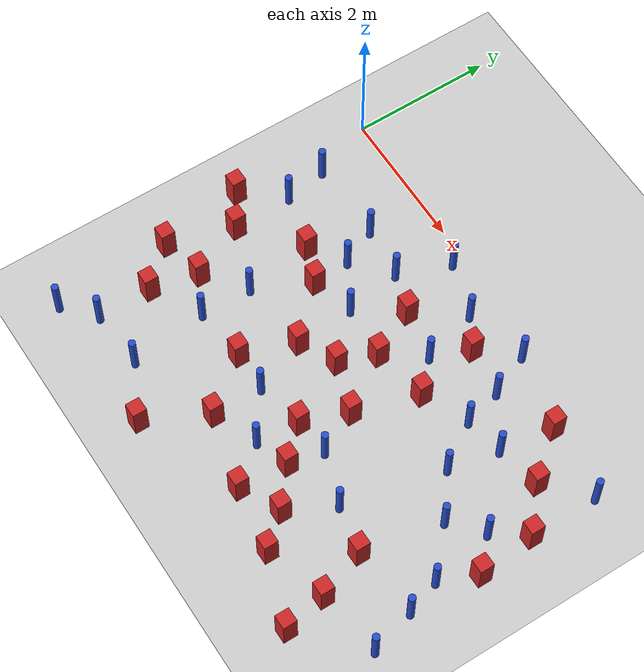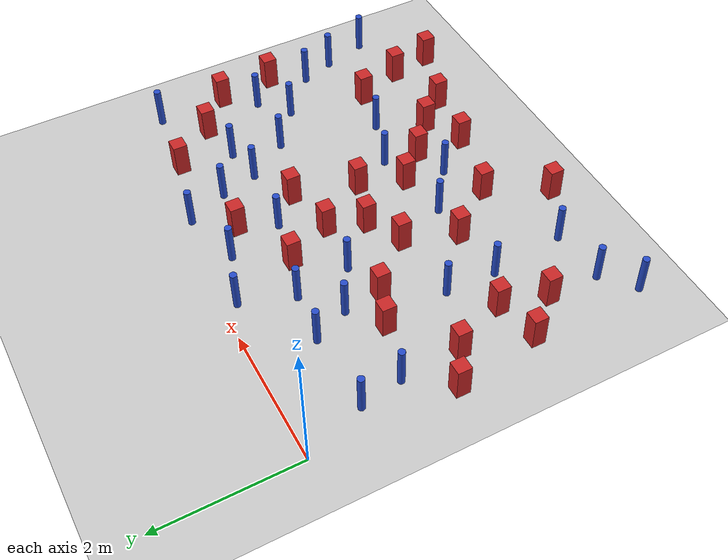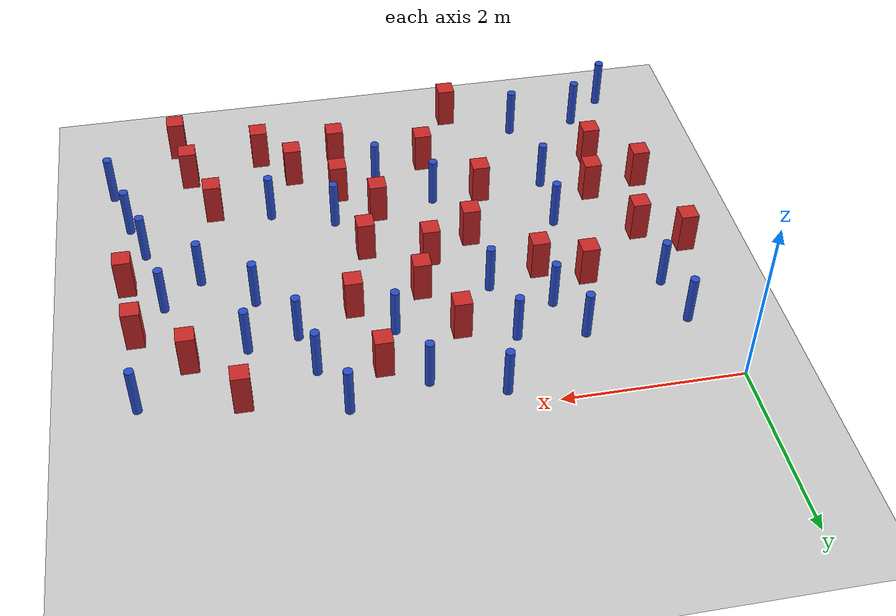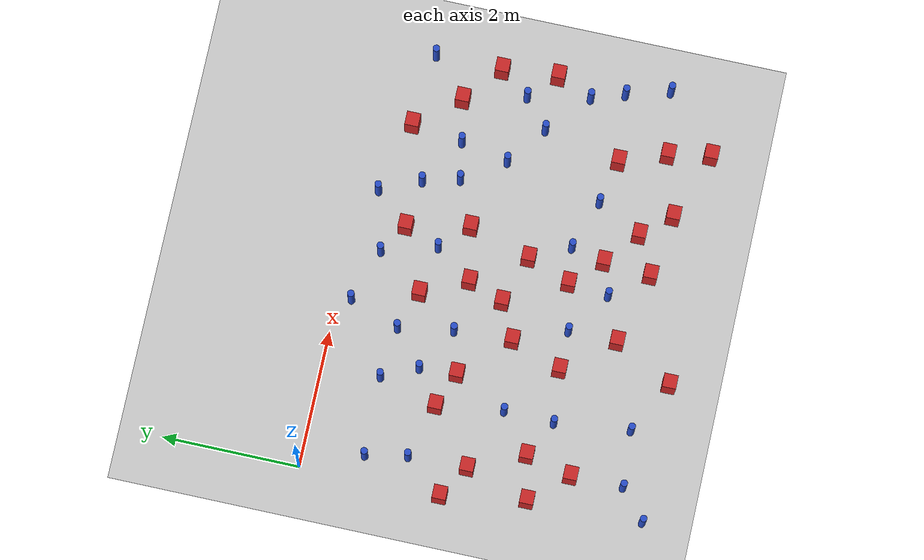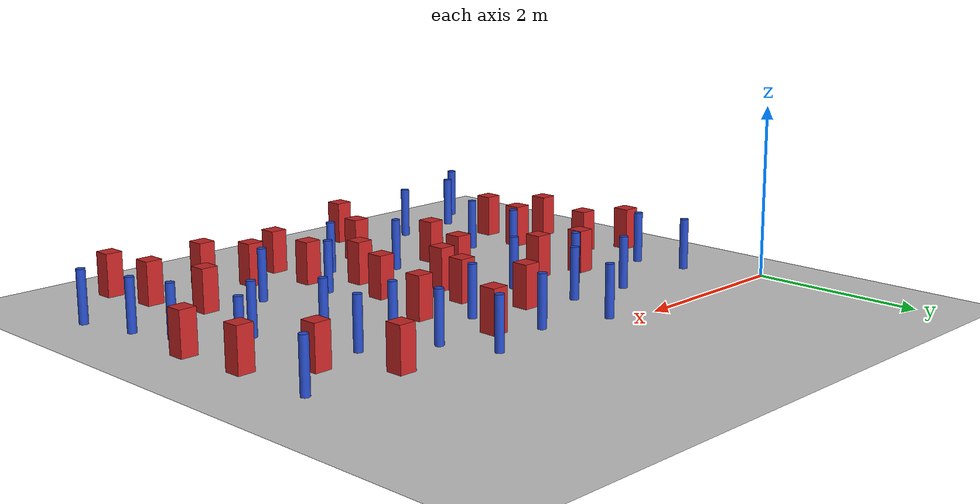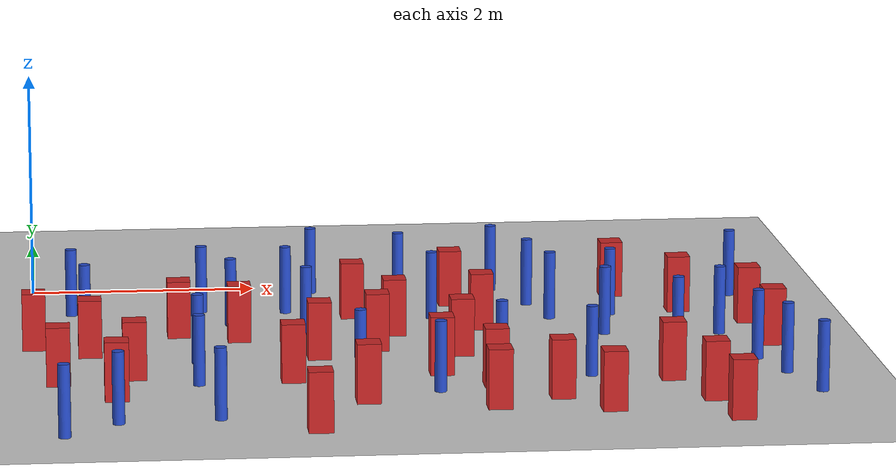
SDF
<sdf version="1.6">
 <world name="default">
  <model name="ground_plane">
   <static>1</static>
   <link name="link">
    <collision name="collision">
     <geometry><plane><normal>0 0 1</normal><size>100 100</size></plane></geometry>
     <surface><friction><ode><mu>100</mu><mu2>50</mu2></ode></friction></surface>
    </collision>
    <visual name="visual">
     <cast_shadows>0</cast_shadows>
     <geometry><plane><normal>0 0 1</normal><size>100 100</size></plane></geometry>
     <material>
      <ambient>1.0 1.0 1.0 1.0</ambient>
      <diffuse>0.8 0.8 0.8 1.0</diffuse>
      <specular>0.01 0.01 0.01 1.000000</specular>
     </material>
    </visual>
   </link>
  </model>
  <model name="pole_obstacle1">
   <static>true</static>
   <pose>4.14799465705 -0.242558096195 2.88873142074e-08 -9.90536689628e-09 4.60219948994e-07 -1.20965994959e-07</pose>
   <link name="link">
    <pose>0 0 0.3 0 -0 0</pose>
    <inertial>
     <mass>1</mass>
     <inertia><ixx>0.145833</ixx><ixy>0</ixy><ixz>0</ixz><iyy>0.145833</iyy><iyz>0</iyz><izz>0.125</izz></inertia>
    </inertial>
    <collision name="collision">
     <geometry><cylinder><radius>0.05</radius><length>.6</length></cylinder></geometry>
    </collision>
    <visual name="visual">
     <geometry><cylinder><radius>0.05</radius><length>.6</length></cylinder></geometry>
     <material>
      <script><name>Gazebo/Blue</name><uri>file://media/materials/scripts/gazebo.material</uri></script>
     </material>
    </visual>
   </link>
  </model>
  <model name="square_post_obstacle0">
   <static>true</static>
   <pose>3.7188085456 -0.741724730192 8.22691968438e-08 7.2212513382e-06 -7.54495500217e-07 2.29674213826e-05</pose>
   <link name="link">
    <pose>0 0 0.25 0 -0 0</pose>
    <inertial>
     <mass>100</mass>
     <inertia>
      <ixx>0.166667</ixx>
      <ixy>0</ixy>
      <ixz>0</ixz>
      <iyy>0.166667</iyy>
      <iyz>0</iyz>
      <izz>0.166667</izz>
     </inertia>
    </inertial>
    <collision name="collision"><geometry><box><size>.2 .2 .5</size></box></geometry></collision>
    <visual name="visual">
     <geometry><box><size>.2 .2 .5</size></box></geometry>
     <material>
      <script><name>Gazebo/Red</name><uri>file://media/materials/scripts/gazebo.material</uri></script>
     </material>
    </visual>
   </link>
  </model>
  <model name="pole_obstacle3">
   <static>true</static>
   <pose>3.50815053326 -1.26298609997 2.88873142074e-08 -9.90536689395e-09 4.60219949e-07 -1.20965994953e-07</pose>
   <link name="link">
    <pose>0 0 0.3 0 -0 0</pose>
    <inertial>
     <mass>1</mass>
     <inertia><ixx>0.145833</ixx><ixy>0</ixy><ixz>0</ixz><iyy>0.145833</iyy><iyz>0</iyz><izz>0.125</izz></inertia>
    </inertial>
    <collision name="collision">
     <geometry><cylinder><radius>0.05</radius><length>.6</length></cylinder></geometry>
    </collision>
    <visual name="visual">
     <geometry><cylinder><radius>0.05</radius><length>.6</length></cylinder></geometry>
     <material>
      <script><name>Gazebo/Blue</name><uri>file://media/materials/scripts/gazebo.material</uri></script>
     </material>
    </visual>
   </link>
  </model>
  <model name="pole_obstacle22">
   <static>true</static>
   <pose>0.338908169414 -0.882545459485 2.88873142074e-08 -9.9053668986e-09 4.60219948989e-07 -1.20965994961e-07</pose>
   <link name="link">
    <pose>0 0 0.3 0 -0 0</pose>
    <inertial>
     <mass>1</mass>
     <inertia><ixx>0.145833</ixx><ixy>0</ixy><ixz>0</ixz><iyy>0.145833</iyy><iyz>0</iyz><izz>0.125</izz></inertia>
    </inertial>
    <collision name="collision">
     <geometry><cylinder><radius>0.05</radius><length>.6</length></cylinder></geometry>
    </collision>
    <visual name="visual">
     <geometry><cylinder><radius>0.05</radius><length>.6</length></cylinder></geometry>
     <material>
      <script><name>Gazebo/Blue</name><uri>file://media/materials/scripts/gazebo.material</uri></script>
     </material>
    </visual>
   </link>
  </model>
  <model name="square_post_obstacle18">
   <static>true</static>
   <pose>3.75729930066 -4.32082164293 8.22691968438e-08 7.2212513382e-06 -7.54495500217e-07 2.29674213826e-05</pose>
   <link name="link">
    <pose>0 0 0.25 0 -0 0</pose>
    <inertial>
     <mass>100</mass>
     <inertia>
      <ixx>0.166667</ixx>
      <ixy>0</ixy>
      <ixz>0</ixz>
      <iyy>0.166667</iyy>
      <iyz>0</iyz>
      <izz>0.166667</izz>
     </inertia>
    </inertial>
    <collision name="collision"><geometry><box><size>.2 .2 .5</size></box></geometry></collision>
    <visual name="visual">
     <geometry><box><size>.2 .2 .5</size></box></geometry>
     <material>
      <script><name>Gazebo/Red</name><uri>file://media/materials/scripts/gazebo.material</uri></script>
     </material>
    </visual>
   </link>
  </model>
  <model name="pole_obstacle28">
   <static>true</static>
   <pose>4.95235969288 -1.96737347268 2.88873142074e-08 -9.90536689117e-09 4.60219949006e-07 -1.20965994949e-07</pose>
   <link name="link">
    <pose>0 0 0.3 0 -0 0</pose>
    <inertial>
     <mass>1</mass>
     <inertia><ixx>0.145833</ixx><ixy>0</ixy><ixz>0</ixz><iyy>0.145833</iyy><iyz>0</iyz><izz>0.125</izz></inertia>
    </inertial>
    <collision name="collision">
     <geometry><cylinder><radius>0.05</radius><length>.6</length></cylinder></geometry>
    </collision>
    <visual name="visual">
     <geometry><cylinder><radius>0.05</radius><length>.6</length></cylinder></geometry>
     <material>
      <script><name>Gazebo/Blue</name><uri>file://media/materials/scripts/gazebo.material</uri></script>
     </material>
    </visual>
   </link>
  </model>
  <model name="square_post_obstacle20">
   <static>true</static>
   <pose>2.41737415705 -2.58445904227 8.22691968438e-08 7.2212513382e-06 -7.54495500217e-07 2.29674213826e-05</pose>
   <link name="link">
    <pose>0 0 0.25 0 -0 0</pose>
    <inertial>
     <mass>100</mass>
     <inertia>
      <ixx>0.166667</ixx>
      <ixy>0</ixy>
      <ixz>0</ixz>
      <iyy>0.166667</iyy>
      <iyz>0</iyz>
      <izz>0.166667</izz>
     </inertia>
    </inertial>
    <collision name="collision"><geometry><box><size>.2 .2 .5</size></box></geometry></collision>
    <visual name="visual">
     <geometry><box><size>.2 .2 .5</size></box></geometry>
     <material>
      <script><name>Gazebo/Red</name><uri>file://media/materials/scripts/gazebo.material</uri></script>
     </material>
    </visual>
   </link>
  </model>
  <model name="pole_obstacle41">
   <static>true</static>
   <pose>0.238288000314 -4.93766443499 2.88873142074e-08 -9.90536689491e-09 4.60219948997e-07 -1.20965994955e-07</pose>
   <link name="link">
    <pose>0 0 0.3 0 -0 0</pose>
    <inertial>
     <mass>1</mass>
     <inertia><ixx>0.145833</ixx><ixy>0</ixy><ixz>0</ixz><iyy>0.145833</iyy><iyz>0</iyz><izz>0.125</izz></inertia>
    </inertial>
    <collision name="collision">
     <geometry><cylinder><radius>0.05</radius><length>.6</length></cylinder></geometry>
    </collision>
    <visual name="visual">
     <geometry><cylinder><radius>0.05</radius><length>.6</length></cylinder></geometry>
     <material>
      <script><name>Gazebo/Blue</name><uri>file://media/materials/scripts/gazebo.material</uri></script>
     </material>
    </visual>
   </link>
  </model>
  <model name="pole_obstacle44">
   <static>true</static>
   <pose>4.64222389461 -3.38996307122 2.88873142074e-08 -9.90536690245e-09 4.6021994898e-07 -1.20965994966e-07</pose>
   <link name="link">
    <pose>0 0 0.3 0 -0 0</pose>
    <inertial>
     <mass>1</mass>
     <inertia><ixx>0.145833</ixx><ixy>0</ixy><ixz>0</ixz><iyy>0.145833</iyy><iyz>0</iyz><izz>0.125</izz></inertia>
    </inertial>
    <collision name="collision">
     <geometry><cylinder><radius>0.05</radius><length>.6</length></cylinder></geometry>
    </collision>
    <visual name="visual">
     <geometry><cylinder><radius>0.05</radius><length>.6</length></cylinder></geometry>
     <material>
      <script><name>Gazebo/Blue</name><uri>file://media/materials/scripts/gazebo.material</uri></script>
     </material>
    </visual>
   </link>
  </model>
  <model name="square_post_obstacle37">
   <static>true</static>
   <pose>3.80883501356 -3.62921104398 8.22691968438e-08 7.2212513382e-06 -7.54495500217e-07 2.29674213826e-05</pose>
   <link name="link">
    <pose>0 0 0.25 0 -0 0</pose>
    <inertial>
     <mass>100</mass>
     <inertia>
      <ixx>0.166667</ixx>
      <ixy>0</ixy>
      <ixz>0</ixz>
      <iyy>0.166667</iyy>
      <iyz>0</iyz>
      <izz>0.166667</izz>
     </inertia>
    </inertial>
    <collision name="collision"><geometry><box><size>.2 .2 .5</size></box></geometry></collision>
    <visual name="visual">
     <geometry><box><size>.2 .2 .5</size></box></geometry>
     <material>
      <script><name>Gazebo/Red</name><uri>file://media/materials/scripts/gazebo.material</uri></script>
     </material>
    </visual>
   </link>
  </model>
  <model name="pole_obstacle55">
   <static>true</static>
   <pose>2.50852049271 -0.206989764907 2.88873142074e-08 -9.90536692243e-09 4.60219948932e-07 -1.20965994987e-07</pose>
   <link name="link">
    <pose>0 0 0.3 0 -0 0</pose>
    <inertial>
     <mass>1</mass>
     <inertia><ixx>0.145833</ixx><ixy>0</ixy><ixz>0</ixz><iyy>0.145833</iyy><iyz>0</iyz><izz>0.125</izz></inertia>
    </inertial>
    <collision name="collision">
     <geometry><cylinder><radius>0.05</radius><length>.6</length></cylinder></geometry>
    </collision>
    <visual name="visual">
     <geometry><cylinder><radius>0.05</radius><length>.6</length></cylinder></geometry>
     <material>
      <script><name>Gazebo/Blue</name><uri>file://media/materials/scripts/gazebo.material</uri></script>
     </material>
    </visual>
   </link>
  </model>
  <model name="square_post_obstacle51">
   <static>true</static>
   <pose>4.30704185627 -4.04356211505 8.22691968438e-08 7.2212513382e-06 -7.54495500217e-07 2.29674213826e-05</pose>
   <link name="link">
    <pose>0 0 0.25 0 -0 0</pose>
    <inertial>
     <mass>100</mass>
     <inertia>
      <ixx>0.166667</ixx>
      <ixy>0</ixy>
      <ixz>0</ixz>
      <iyy>0.166667</iyy>
      <iyz>0</iyz>
      <izz>0.166667</izz>
     </inertia>
    </inertial>
    <collision name="collision"><geometry><box><size>.2 .2 .5</size></box></geometry></collision>
    <visual name="visual">
     <geometry><box><size>.2 .2 .5</size></box></geometry>
     <material>
      <script><name>Gazebo/Red</name><uri>file://media/materials/scripts/gazebo.material</uri></script>
     </material>
    </visual>
   </link>
  </model>
  <model name="square_post_obstacle52">
   <static>true</static>
   <pose>3.39914178643 -3.19997491907 8.22691968438e-08 7.2212513382e-06 -7.54495500217e-07 2.29674213826e-05</pose>
   <link name="link">
    <pose>0 0 0.25 0 -0 0</pose>
    <inertial>
     <mass>100</mass>
     <inertia>
      <ixx>0.166667</ixx>
      <ixy>0</ixy>
      <ixz>0</ixz>
      <iyy>0.166667</iyy>
      <iyz>0</iyz>
      <izz>0.166667</izz>
     </inertia>
    </inertial>
    <collision name="collision"><geometry><box><size>.2 .2 .5</size></box></geometry></collision>
    <visual name="visual">
     <geometry><box><size>.2 .2 .5</size></box></geometry>
     <material>
      <script><name>Gazebo/Red</name><uri>file://media/materials/scripts/gazebo.material</uri></script>
     </material>
    </visual>
   </link>
  </model>
  <model name="square_post_obstacle54">
   <static>true</static>
   <pose>3.12628814423 -1.80748738485 8.22691968438e-08 7.2212513382e-06 -7.54495500217e-07 2.29674213826e-05</pose>
   <link name="link">
    <pose>0 0 0.25 0 -0 0</pose>
    <inertial>
     <mass>100</mass>
     <inertia>
      <ixx>0.166667</ixx>
      <ixy>0</ixy>
      <ixz>0</ixz>
      <iyy>0.166667</iyy>
      <iyz>0</iyz>
      <izz>0.166667</izz>
     </inertia>
    </inertial>
    <collision name="collision"><geometry><box><size>.2 .2 .5</size></box></geometry></collision>
    <visual name="visual">
     <geometry><box><size>.2 .2 .5</size></box></geometry>
     <material>
      <script><name>Gazebo/Red</name><uri>file://media/materials/scripts/gazebo.material</uri></script>
     </material>
    </visual>
   </link>
  </model>
  <model name="pole_obstacle70">
   <static>true</static>
   <pose>3.33233396735 -3.79147414755 2.88873142074e-08 -9.90536690232e-09 4.6021994898e-07 -1.20965994968e-07</pose>
   <link name="link">
    <pose>0 0 0.3 0 -0 0</pose>
    <inertial>
     <mass>1</mass>
     <inertia><ixx>0.145833</ixx><ixy>0</ixy><ixz>0</ixz><iyy>0.145833</iyy><iyz>0</iyz><izz>0.125</izz></inertia>
    </inertial>
    <collision name="collision">
     <geometry><cylinder><radius>0.05</radius><length>.6</length></cylinder></geometry>
    </collision>
    <visual name="visual">
     <geometry><cylinder><radius>0.05</radius><length>.6</length></cylinder></geometry>
     <material>
      <script><name>Gazebo/Blue</name><uri>file://media/materials/scripts/gazebo.material</uri></script>
     </material>
    </visual>
   </link>
  </model>
  <model name="square_post_obstacle66">
   <static>true</static>
   <pose>0.837022607704 -3.13448057922 8.22691968438e-08 7.2212513382e-06 -7.54495500217e-07 2.29674213826e-05</pose>
   <link name="link">
    <pose>0 0 0.25 0 -0 0</pose>
    <inertial>
     <mass>100</mass>
     <inertia>
      <ixx>0.166667</ixx>
      <ixy>0</ixy>
      <ixz>0</ixz>
      <iyy>0.166667</iyy>
      <iyz>0</iyz>
      <izz>0.166667</izz>
     </inertia>
    </inertial>
    <collision name="collision"><geometry><box><size>.2 .2 .5</size></box></geometry></collision>
    <visual name="visual">
     <geometry><box><size>.2 .2 .5</size></box></geometry>
     <material>
      <script><name>Gazebo/Red</name><uri>file://media/materials/scripts/gazebo.material</uri></script>
     </material>
    </visual>
   </link>
  </model>
  <model name="pole_obstacle78">
   <static>true</static>
   <pose>6.12475251126 -2.94781404142 2.88873142074e-08 -9.90536690245e-09 4.6021994898e-07 -1.20965994966e-07</pose>
   <link name="link">
    <pose>0 0 0.3 0 -0 0</pose>
    <inertial>
     <mass>1</mass>
     <inertia><ixx>0.145833</ixx><ixy>0</ixy><ixz>0</ixz><iyy>0.145833</iyy><iyz>0</iyz><izz>0.125</izz></inertia>
    </inertial>
    <collision name="collision">
     <geometry><cylinder><radius>0.05</radius><length>.6</length></cylinder></geometry>
    </collision>
    <visual name="visual">
     <geometry><cylinder><radius>0.05</radius><length>.6</length></cylinder></geometry>
     <material>
      <script><name>Gazebo/Blue</name><uri>file://media/materials/scripts/gazebo.material</uri></script>
     </material>
    </visual>
   </link>
  </model>
  <model name="pole_obstacle80">
   <static>true</static>
   <pose>3.28111691016 -0.468104953582 2.88873142074e-08 -9.90536689634e-09 4.60219948994e-07 -1.20965994958e-07</pose>
   <link name="link">
    <pose>0 0 0.3 0 -0 0</pose>
    <inertial>
     <mass>1</mass>
     <inertia><ixx>0.145833</ixx><ixy>0</ixy><ixz>0</ixz><iyy>0.145833</iyy><iyz>0</iyz><izz>0.125</izz></inertia>
    </inertial>
    <collision name="collision">
     <geometry><cylinder><radius>0.05</radius><length>.6</length></cylinder></geometry>
    </collision>
    <visual name="visual">
     <geometry><cylinder><radius>0.05</radius><length>.6</length></cylinder></geometry>
     <material>
      <script><name>Gazebo/Blue</name><uri>file://media/materials/scripts/gazebo.material</uri></script>
     </material>
    </visual>
   </link>
  </model>
  <model name="square_post_obstacle69">
   <static>true</static>
   <pose>1.25819297826 -1.71629216727 8.22691968438e-08 7.2212513382e-06 -7.54495500217e-07 2.29674213826e-05</pose>
   <link name="link">
    <pose>0 0 0.25 0 -0 0</pose>
    <inertial>
     <mass>100</mass>
     <inertia>
      <ixx>0.166667</ixx>
      <ixy>0</ixy>
      <ixz>0</ixz>
      <iyy>0.166667</iyy>
      <iyz>0</iyz>
      <izz>0.166667</izz>
     </inertia>
    </inertial>
    <collision name="collision"><geometry><box><size>.2 .2 .5</size></box></geometry></collision>
    <visual name="visual">
     <geometry><box><size>.2 .2 .5</size></box></geometry>
     <material>
      <script><name>Gazebo/Red</name><uri>file://media/materials/scripts/gazebo.material</uri></script>
     </material>
    </visual>
   </link>
  </model>
  <model name="square_post_obstacle78">
   <static>true</static>
   <pose>0.674095238642 -3.80381742312 8.22691968438e-08 7.2212513382e-06 -7.54495500217e-07 2.29674213826e-05</pose>
   <link name="link">
    <pose>0 0 0.25 0 -0 0</pose>
    <inertial>
     <mass>100</mass>
     <inertia>
      <ixx>0.166667</ixx>
      <ixy>0</ixy>
      <ixz>0</ixz>
      <iyy>0.166667</iyy>
      <iyz>0</iyz>
      <izz>0.166667</izz>
     </inertia>
    </inertial>
    <collision name="collision"><geometry><box><size>.2 .2 .5</size></box></geometry></collision>
    <visual name="visual">
     <geometry><box><size>.2 .2 .5</size></box></geometry>
     <material>
      <script><name>Gazebo/Red</name><uri>file://media/materials/scripts/gazebo.material</uri></script>
     </material>
    </visual>
   </link>
  </model>
  <model name="square_post_obstacle80">
   <static>true</static>
   <pose>2.93278602253 -2.32562689426 8.22691968438e-08 7.2212513382e-06 -7.54495500217e-07 2.29674213826e-05</pose>
   <link name="link">
    <pose>0 0 0.25 0 -0 0</pose>
    <inertial>
     <mass>100</mass>
     <inertia>
      <ixx>0.166667</ixx>
      <ixy>0</ixy>
      <ixz>0</ixz>
      <iyy>0.166667</iyy>
      <iyz>0</iyz>
      <izz>0.166667</izz>
     </inertia>
    </inertial>
    <collision name="collision"><geometry><box><size>.2 .2 .5</size></box></geometry></collision>
    <visual name="visual">
     <geometry><box><size>.2 .2 .5</size></box></geometry>
     <material>
      <script><name>Gazebo/Red</name><uri>file://media/materials/scripts/gazebo.material</uri></script>
     </material>
    </visual>
   </link>
  </model>
  <model name="square_post_obstacle81">
   <static>true</static>
   <pose>5.2081171145 -0.515778272554 8.22691968438e-08 7.2212513382e-06 -7.54495500217e-07 2.29674213826e-05</pose>
   <link name="link">
    <pose>0 0 0.25 0 -0 0</pose>
    <inertial>
     <mass>100</mass>
     <inertia>
      <ixx>0.166667</ixx>
      <ixy>0</ixy>
      <ixz>0</ixz>
      <iyy>0.166667</iyy>
      <iyz>0</iyz>
      <izz>0.166667</izz>
     </inertia>
    </inertial>
    <collision name="collision"><geometry><box><size>.2 .2 .5</size></box></geometry></collision>
    <visual name="visual">
     <geometry><box><size>.2 .2 .5</size></box></geometry>
     <material>
      <script><name>Gazebo/Red</name><uri>file://media/materials/scripts/gazebo.material</uri></script>
     </material>
    </visual>
   </link>
  </model>
  <model name="pole_obstacle90">
   <static>true</static>
   <pose>2.70952661724 -3.3417733489 2.88873142074e-08 -9.90536690232e-09 4.6021994898e-07 -1.20965994968e-07</pose>
   <link name="link">
    <pose>0 0 0.3 0 -0 0</pose>
    <inertial>
     <mass>1</mass>
     <inertia><ixx>0.145833</ixx><ixy>0</ixy><ixz>0</ixz><iyy>0.145833</iyy><iyz>0</iyz><izz>0.125</izz></inertia>
    </inertial>
    <collision name="collision">
     <geometry><cylinder><radius>0.05</radius><length>.6</length></cylinder></geometry>
    </collision>
    <visual name="visual">
     <geometry><cylinder><radius>0.05</radius><length>.6</length></cylinder></geometry>
     <material>
      <script><name>Gazebo/Blue</name><uri>file://media/materials/scripts/gazebo.material</uri></script>
     </material>
    </visual>
   </link>
  </model>
  <model name="pole_obstacle91">
   <static>true</static>
   <pose>5.94891460008 -2.04759569226 2.88873142074e-08 -9.90536689749e-09 4.60219948991e-07 -1.20965994959e-07</pose>
   <link name="link">
    <pose>0 0 0.3 0 -0 0</pose>
    <inertial>
     <mass>1</mass>
     <inertia><ixx>0.145833</ixx><ixy>0</ixy><ixz>0</ixz><iyy>0.145833</iyy><iyz>0</iyz><izz>0.125</izz></inertia>
    </inertial>
    <collision name="collision">
     <geometry><cylinder><radius>0.05</radius><length>.6</length></cylinder></geometry>
    </collision>
    <visual name="visual">
     <geometry><cylinder><radius>0.05</radius><length>.6</length></cylinder></geometry>
     <material>
      <script><name>Gazebo/Blue</name><uri>file://media/materials/scripts/gazebo.material</uri></script>
     </material>
    </visual>
   </link>
  </model>
  <model name="square_post_obstacle86">
   <static>true</static>
   <pose>2.80929862576 -1.14266982954 8.22691968438e-08 7.2212513382e-06 -7.54495500217e-07 2.29674213826e-05</pose>
   <link name="link">
    <pose>0 0 0.25 0 -0 0</pose>
    <inertial>
     <mass>100</mass>
     <inertia>
      <ixx>0.166667</ixx>
      <ixy>0</ixy>
      <ixz>0</ixz>
      <iyy>0.166667</iyy>
      <iyz>0</iyz>
      <izz>0.166667</izz>
     </inertia>
    </inertial>
    <collision name="collision"><geometry><box><size>.2 .2 .5</size></box></geometry></collision>
    <visual name="visual">
     <geometry><box><size>.2 .2 .5</size></box></geometry>
     <material>
      <script><name>Gazebo/Red</name><uri>file://media/materials/scripts/gazebo.material</uri></script>
     </material>
    </visual>
   </link>
  </model>
  <model name="square_post_obstacle89">
   <static>true</static>
   <pose>0.203200729287 -3.27220730286 8.22691968438e-08 7.2212513382e-06 -7.54495500217e-07 2.29674213826e-05</pose>
   <link name="link">
    <pose>0 0 0.25 0 -0 0</pose>
    <inertial>
     <mass>100</mass>
     <inertia>
      <ixx>0.166667</ixx>
      <ixy>0</ixy>
      <ixz>0</ixz>
      <iyy>0.166667</iyy>
      <iyz>0</iyz>
      <izz>0.166667</izz>
     </inertia>
    </inertial>
    <collision name="collision"><geometry><box><size>.2 .2 .5</size></box></geometry></collision>
    <visual name="visual">
     <geometry><box><size>.2 .2 .5</size></box></geometry>
     <material>
      <script><name>Gazebo/Red</name><uri>file://media/materials/scripts/gazebo.material</uri></script>
     </material>
    </visual>
   </link>
  </model>
  <model name="pole_obstacle105">
   <static>true</static>
   <pose>1.49172129263 -0.858161084746 2.88873142074e-08 -9.90536689692e-09 4.60219948993e-07 -1.20965994958e-07</pose>
   <link name="link">
    <pose>0 0 0.3 0 -0 0</pose>
    <inertial>
     <mass>1</mass>
     <inertia><ixx>0.145833</ixx><ixy>0</ixy><ixz>0</ixz><iyy>0.145833</iyy><iyz>0</iyz><izz>0.125</izz></inertia>
    </inertial>
    <collision name="collision">
     <geometry><cylinder><radius>0.05</radius><length>.6</length></cylinder></geometry>
    </collision>
    <visual name="visual">
     <geometry><cylinder><radius>0.05</radius><length>.6</length></cylinder></geometry>
     <material>
      <script><name>Gazebo/Blue</name><uri>file://media/materials/scripts/gazebo.material</uri></script>
     </material>
    </visual>
   </link>
  </model>
  <model name="pole_obstacle108">
   <static>true</static>
   <pose>4.40767858621 -0.829533924978 2.88873142074e-08 -9.90536689837e-09 4.60219948989e-07 -1.2096599496e-07</pose>
   <link name="link">
    <pose>0 0 0.3 0 -0 0</pose>
    <inertial>
     <mass>1</mass>
     <inertia><ixx>0.145833</ixx><ixy>0</ixy><ixz>0</ixz><iyy>0.145833</iyy><iyz>0</iyz><izz>0.125</izz></inertia>
    </inertial>
    <collision name="collision">
     <geometry><cylinder><radius>0.05</radius><length>.6</length></cylinder></geometry>
    </collision>
    <visual name="visual">
     <geometry><cylinder><radius>0.05</radius><length>.6</length></cylinder></geometry>
     <material>
      <script><name>Gazebo/Blue</name><uri>file://media/materials/scripts/gazebo.material</uri></script>
     </material>
    </visual>
   </link>
  </model>
  <model name="square_post_obstacle105">
   <static>true</static>
   <pose>3.63626102379 -2.56441701387 8.22691968438e-08 7.2212513382e-06 -7.54495500217e-07 2.29674213826e-05</pose>
   <link name="link">
    <pose>0 0 0.25 0 -0 0</pose>
    <inertial>
     <mass>100</mass>
     <inertia>
      <ixx>0.166667</ixx>
      <ixy>0</ixy>
      <ixz>0</ixz>
      <iyy>0.166667</iyy>
      <iyz>0</iyz>
      <izz>0.166667</izz>
     </inertia>
    </inertial>
    <collision name="collision"><geometry><box><size>.2 .2 .5</size></box></geometry></collision>
    <visual name="visual">
     <geometry><box><size>.2 .2 .5</size></box></geometry>
     <material>
      <script><name>Gazebo/Red</name><uri>file://media/materials/scripts/gazebo.material</uri></script>
     </material>
    </visual>
   </link>
  </model>
  <model name="square_post_obstacle112">
   <static>true</static>
   <pose>5.2995979953 -3.53253261902 8.22691968438e-08 7.2212513382e-06 -7.54495500217e-07 2.29674213826e-05</pose>
   <link name="link">
    <pose>0 0 0.25 0 -0 0</pose>
    <inertial>
     <mass>100</mass>
     <inertia>
      <ixx>0.166667</ixx>
      <ixy>0</ixy>
      <ixz>0</ixz>
      <iyy>0.166667</iyy>
      <iyz>0</iyz>
      <izz>0.166667</izz>
     </inertia>
    </inertial>
    <collision name="collision"><geometry><box><size>.2 .2 .5</size></box></geometry></collision>
    <visual name="visual">
     <geometry><box><size>.2 .2 .5</size></box></geometry>
     <material>
      <script><name>Gazebo/Red</name><uri>file://media/materials/scripts/gazebo.material</uri></script>
     </material>
    </visual>
   </link>
  </model>
  <model name="pole_obstacle117">
   <static>true</static>
   <pose>1.38202685603 -2.68647692397 2.88873142074e-08 -9.90536689791e-09 4.6021994899e-07 -1.20965994959e-07</pose>
   <link name="link">
    <pose>0 0 0.3 0 -0 0</pose>
    <inertial>
     <mass>1</mass>
     <inertia><ixx>0.145833</ixx><ixy>0</ixy><ixz>0</ixz><iyy>0.145833</iyy><iyz>0</iyz><izz>0.125</izz></inertia>
    </inertial>
    <collision name="collision">
     <geometry><cylinder><radius>0.05</radius><length>.6</length></cylinder></geometry>
    </collision>
    <visual name="visual">
     <geometry><cylinder><radius>0.05</radius><length>.6</length></cylinder></geometry>
     <material>
      <script><name>Gazebo/Blue</name><uri>file://media/materials/scripts/gazebo.material</uri></script>
     </material>
    </visual>
   </link>
  </model>
  <model name="square_post_obstacle120">
   <static>true</static>
   <pose>0.00581405477342 -2.05117652767 8.22691968438e-08 7.2212513382e-06 -7.54495500217e-07 2.29674213826e-05</pose>
   <link name="link">
    <pose>0 0 0.25 0 -0 0</pose>
    <inertial>
     <mass>100</mass>
     <inertia>
      <ixx>0.166667</ixx>
      <ixy>0</ixy>
      <ixz>0</ixz>
      <iyy>0.166667</iyy>
      <iyz>0</iyz>
      <izz>0.166667</izz>
     </inertia>
    </inertial>
    <collision name="collision"><geometry><box><size>.2 .2 .5</size></box></geometry></collision>
    <visual name="visual">
     <geometry><box><size>.2 .2 .5</size></box></geometry>
     <material>
      <script><name>Gazebo/Red</name><uri>file://media/materials/scripts/gazebo.material</uri></script>
     </material>
    </visual>
   </link>
  </model>
  <model name="square_post_obstacle123">
   <static>true</static>
   <pose>4.67229171555 -4.46523778112 8.22691968438e-08 7.22125133819e-06 -7.54495500217e-07 2.29674213826e-05</pose>
   <link name="link">
    <pose>0 0 0.25 0 -0 0</pose>
    <inertial>
     <mass>100</mass>
     <inertia>
      <ixx>0.166667</ixx>
      <ixy>0</ixy>
      <ixz>0</ixz>
      <iyy>0.166667</iyy>
      <iyz>0</iyz>
      <izz>0.166667</izz>
     </inertia>
    </inertial>
    <collision name="collision"><geometry><box><size>.2 .2 .5</size></box></geometry></collision>
    <visual name="visual">
     <geometry><box><size>.2 .2 .5</size></box></geometry>
     <material>
      <script><name>Gazebo/Red</name><uri>file://media/materials/scripts/gazebo.material</uri></script>
     </material>
    </visual>
   </link>
  </model>
  <model name="square_post_obstacle124">
   <static>true</static>
   <pose>5.72080999446 -1.14574526067 8.22691968438e-08 7.2212513382e-06 -7.54495500217e-07 2.29674213826e-05</pose>
   <link name="link">
    <pose>0 0 0.25 0 -0 0</pose>
    <inertial>
     <mass>100</mass>
     <inertia>
      <ixx>0.166667</ixx>
      <ixy>0</ixy>
      <ixz>0</ixz>
      <iyy>0.166667</iyy>
      <iyz>0</iyz>
      <izz>0.166667</izz>
     </inertia>
    </inertial>
    <collision name="collision"><geometry><box><size>.2 .2 .5</size></box></geometry></collision>
    <visual name="visual">
     <geometry><box><size>.2 .2 .5</size></box></geometry>
     <material>
      <script><name>Gazebo/Red</name><uri>file://media/materials/scripts/gazebo.material</uri></script>
     </material>
    </visual>
   </link>
  </model>
  <model name="pole_obstacle129">
   <static>true</static>
   <pose>0.67129893631 -4.5673194336 2.88873142074e-08 -9.90536689661e-09 4.60219948993e-07 -1.20965994957e-07</pose>
   <link name="link">
    <pose>0 0 0.3 0 -0 0</pose>
    <inertial>
     <mass>1</mass>
     <inertia><ixx>0.145833</ixx><ixy>0</ixy><ixz>0</ixz><iyy>0.145833</iyy><iyz>0</iyz><izz>0.125</izz></inertia>
    </inertial>
    <collision name="collision">
     <geometry><cylinder><radius>0.05</radius><length>.6</length></cylinder></geometry>
    </collision>
    <visual name="visual">
     <geometry><cylinder><radius>0.05</radius><length>.6</length></cylinder></geometry>
     <material>
      <script><name>Gazebo/Blue</name><uri>file://media/materials/scripts/gazebo.material</uri></script>
     </material>
    </visual>
   </link>
  </model>
  <model name="square_post_obstacle127">
   <static>true</static>
   <pose>6.27019614949 -1.61295816834 8.22691968438e-08 7.2212513382e-06 -7.54495500217e-07 2.29674213826e-05</pose>
   <link name="link">
    <pose>0 0 0.25 0 -0 0</pose>
    <inertial>
     <mass>100</mass>
     <inertia>
      <ixx>0.166667</ixx>
      <ixy>0</ixy>
      <ixz>0</ixz>
      <iyy>0.166667</iyy>
      <iyz>0</iyz>
      <izz>0.166667</izz>
     </inertia>
    </inertial>
    <collision name="collision"><geometry><box><size>.2 .2 .5</size></box></geometry></collision>
    <visual name="visual">
     <geometry><box><size>.2 .2 .5</size></box></geometry>
     <material>
      <script><name>Gazebo/Red</name><uri>file://media/materials/scripts/gazebo.material</uri></script>
     </material>
    </visual>
   </link>
  </model>
  <model name="square_post_obstacle133">
   <static>true</static>
   <pose>3.90386691734 -1.65754828961 8.22691968438e-08 7.2212513382e-06 -7.54495500217e-07 2.29674213826e-05</pose>
   <link name="link">
    <pose>0 0 0.25 0 -0 0</pose>
    <inertial>
     <mass>100</mass>
     <inertia>
      <ixx>0.166667</ixx>
      <ixy>0</ixy>
      <ixz>0</ixz>
      <iyy>0.166667</iyy>
      <iyz>0</iyz>
      <izz>0.166667</izz>
     </inertia>
    </inertial>
    <collision name="collision"><geometry><box><size>.2 .2 .5</size></box></geometry></collision>
    <visual name="visual">
     <geometry><box><size>.2 .2 .5</size></box></geometry>
     <material>
      <script><name>Gazebo/Red</name><uri>file://media/materials/scripts/gazebo.material</uri></script>
     </material>
    </visual>
   </link>
  </model>
  <model name="square_post_obstacle135">
   <static>true</static>
   <pose>5.66116898316 -4.81783899321 8.22691968438e-08 7.22125133819e-06 -7.54495500217e-07 2.29674213826e-05</pose>
   <link name="link">
    <pose>0 0 0.25 0 -0 0</pose>
    <inertial>
     <mass>100</mass>
     <inertia>
      <ixx>0.166667</ixx>
      <ixy>0</ixy>
      <ixz>0</ixz>
      <iyy>0.166667</iyy>
      <iyz>0</iyz>
      <izz>0.166667</izz>
     </inertia>
    </inertial>
    <collision name="collision"><geometry><box><size>.2 .2 .5</size></box></geometry></collision>
    <visual name="visual">
     <geometry><box><size>.2 .2 .5</size></box></geometry>
     <material>
      <script><name>Gazebo/Red</name><uri>file://media/materials/scripts/gazebo.material</uri></script>
     </material>
    </visual>
   </link>
  </model>
  <model name="square_post_obstacle138">
   <static>true</static>
   <pose>2.14614741345 -3.33388900239 8.22691968438e-08 7.2212513382e-06 -7.54495500217e-07 2.29674213826e-05</pose>
   <link name="link">
    <pose>0 0 0.25 0 -0 0</pose>
    <inertial>
     <mass>100</mass>
     <inertia>
      <ixx>0.166667</ixx>
      <ixy>0</ixy>
      <ixz>0</ixz>
      <iyy>0.166667</iyy>
      <iyz>0</iyz>
      <izz>0.166667</izz>
     </inertia>
    </inertial>
    <collision name="collision"><geometry><box><size>.2 .2 .5</size></box></geometry></collision>
    <visual name="visual">
     <geometry><box><size>.2 .2 .5</size></box></geometry>
     <material>
      <script><name>Gazebo/Red</name><uri>file://media/materials/scripts/gazebo.material</uri></script>
     </material>
    </visual>
   </link>
  </model>
  <model name="pole_obstacle150">
   <static>true</static>
   <pose>2.23435759743 -0.943439589609 2.88873142074e-08 -9.90536689285e-09 4.60219949002e-07 -1.20965994953e-07</pose>
   <link name="link">
    <pose>0 0 0.3 0 -0 0</pose>
    <inertial>
     <mass>1</mass>
     <inertia><ixx>0.145833</ixx><ixy>0</ixy><ixz>0</ixz><iyy>0.145833</iyy><iyz>0</iyz><izz>0.125</izz></inertia>
    </inertial>
    <collision name="collision">
     <geometry><cylinder><radius>0.05</radius><length>.6</length></cylinder></geometry>
    </collision>
    <visual name="visual">
     <geometry><cylinder><radius>0.05</radius><length>.6</length></cylinder></geometry>
     <material>
      <script><name>Gazebo/Blue</name><uri>file://media/materials/scripts/gazebo.material</uri></script>
     </material>
    </visual>
   </link>
  </model>
  <model name="pole_obstacle159">
   <static>true</static>
   <pose>2.3641724647 -1.74226365126 2.88873142074e-08 -9.90536689395e-09 4.60219949e-07 -1.20965994953e-07</pose>
   <link name="link">
    <pose>0 0 0.3 0 -0 0</pose>
    <inertial>
     <mass>1</mass>
     <inertia><ixx>0.145833</ixx><ixy>0</ixy><ixz>0</ixz><iyy>0.145833</iyy><iyz>0</iyz><izz>0.125</izz></inertia>
    </inertial>
    <collision name="collision">
     <geometry><cylinder><radius>0.05</radius><length>.6</length></cylinder></geometry>
    </collision>
    <visual name="visual">
     <geometry><cylinder><radius>0.05</radius><length>.6</length></cylinder></geometry>
     <material>
      <script><name>Gazebo/Blue</name><uri>file://media/materials/scripts/gazebo.material</uri></script>
     </material>
    </visual>
   </link>
  </model>
  <model name="pole_obstacle161">
   <static>true</static>
   <pose>1.72796563735 -1.37428727787 2.88873142074e-08 -9.90536689672e-09 4.60219948993e-07 -1.20965994959e-07</pose>
   <link name="link">
    <pose>0 0 0.3 0 -0 0</pose>
    <inertial>
     <mass>1</mass>
     <inertia><ixx>0.145833</ixx><ixy>0</ixy><ixz>0</ixz><iyy>0.145833</iyy><iyz>0</iyz><izz>0.125</izz></inertia>
    </inertial>
    <collision name="collision">
     <geometry><cylinder><radius>0.05</radius><length>.6</length></cylinder></geometry>
    </collision>
    <visual name="visual">
     <geometry><cylinder><radius>0.05</radius><length>.6</length></cylinder></geometry>
     <material>
      <script><name>Gazebo/Blue</name><uri>file://media/materials/scripts/gazebo.material</uri></script>
     </material>
    </visual>
   </link>
  </model>
  <model name="pole_obstacle165">
   <static>true</static>
   <pose>0.45021324602 -1.48854853887 2.88873142074e-08 -9.90536689915e-09 4.60219948987e-07 -1.20965994962e-07</pose>
   <link name="link">
    <pose>0 0 0.3 0 -0 0</pose>
    <inertial>
     <mass>1</mass>
     <inertia><ixx>0.145833</ixx><ixy>0</ixy><ixz>0</ixz><iyy>0.145833</iyy><iyz>0</iyz><izz>0.125</izz></inertia>
    </inertial>
    <collision name="collision">
     <geometry><cylinder><radius>0.05</radius><length>.6</length></cylinder></geometry>
    </collision>
    <visual name="visual">
     <geometry><cylinder><radius>0.05</radius><length>.6</length></cylinder></geometry>
     <material>
      <script><name>Gazebo/Blue</name><uri>file://media/materials/scripts/gazebo.material</uri></script>
     </material>
    </visual>
   </link>
  </model>
  <model name="square_post_obstacle159">
   <static>true</static>
   <pose>5.54608547171 -4.20831526017 8.22691968438e-08 7.2212513382e-06 -7.54495500217e-07 2.29674213826e-05</pose>
   <link name="link">
    <pose>0 0 0.25 0 -0 0</pose>
    <inertial>
     <mass>100</mass>
     <inertia>
      <ixx>0.166667</ixx>
      <ixy>0</ixy>
      <ixz>0</ixz>
      <iyy>0.166667</iyy>
      <iyz>0</iyz>
      <izz>0.166667</izz>
     </inertia>
    </inertial>
    <collision name="collision"><geometry><box><size>.2 .2 .5</size></box></geometry></collision>
    <visual name="visual">
     <geometry><box><size>.2 .2 .5</size></box></geometry>
     <material>
      <script><name>Gazebo/Red</name><uri>file://media/materials/scripts/gazebo.material</uri></script>
     </material>
    </visual>
   </link>
  </model>
  <model name="square_post_obstacle161">
   <static>true</static>
   <pose>2.71353387674 -4.05318906893 8.22691968438e-08 7.2212513382e-06 -7.54495500217e-07 2.29674213826e-05</pose>
   <link name="link">
    <pose>0 0 0.25 0 -0 0</pose>
    <inertial>
     <mass>100</mass>
     <inertia>
      <ixx>0.166667</ixx>
      <ixy>0</ixy>
      <ixz>0</ixz>
      <iyy>0.166667</iyy>
      <iyz>0</iyz>
      <izz>0.166667</izz>
     </inertia>
    </inertial>
    <collision name="collision"><geometry><box><size>.2 .2 .5</size></box></geometry></collision>
    <visual name="visual">
     <geometry><box><size>.2 .2 .5</size></box></geometry>
     <material>
      <script><name>Gazebo/Red</name><uri>file://media/materials/scripts/gazebo.material</uri></script>
     </material>
    </visual>
   </link>
  </model>
  <model name="square_post_obstacle163">
   <static>true</static>
   <pose>6.34656123098 -2.42715225348 8.22691968438e-08 7.2212513382e-06 -7.54495500217e-07 2.29674213826e-05</pose>
   <link name="link">
    <pose>0 0 0.25 0 -0 0</pose>
    <inertial>
     <mass>100</mass>
     <inertia>
      <ixx>0.166667</ixx>
      <ixy>0</ixy>
      <ixz>0</ixz>
      <iyy>0.166667</iyy>
      <iyz>0</iyz>
      <izz>0.166667</izz>
     </inertia>
    </inertial>
    <collision name="collision"><geometry><box><size>.2 .2 .5</size></box></geometry></collision>
    <visual name="visual">
     <geometry><box><size>.2 .2 .5</size></box></geometry>
     <material>
      <script><name>Gazebo/Red</name><uri>file://media/materials/scripts/gazebo.material</uri></script>
     </material>
    </visual>
   </link>
  </model>
  <model name="pole_obstacle175">
   <static>true</static>
   <pose>1.49064036551 -4.51066730391 2.88873142074e-08 -9.90536689852e-09 4.60219948989e-07 -1.2096599496e-07</pose>
   <link name="link">
    <pose>0 0 0.3 0 -0 0</pose>
    <inertial>
     <mass>1</mass>
     <inertia><ixx>0.145833</ixx><ixy>0</ixy><ixz>0</ixz><iyy>0.145833</iyy><iyz>0</iyz><izz>0.125</izz></inertia>
    </inertial>
    <collision name="collision">
     <geometry><cylinder><radius>0.05</radius><length>.6</length></cylinder></geometry>
    </collision>
    <visual name="visual">
     <geometry><cylinder><radius>0.05</radius><length>.6</length></cylinder></geometry>
     <material>
      <script><name>Gazebo/Blue</name><uri>file://media/materials/scripts/gazebo.material</uri></script>
     </material>
    </visual>
   </link>
  </model>
  <model name="pole_obstacle182">
   <static>true</static>
   <pose>6.27801611734 -0.630572229703 2.88873142074e-08 -9.90536689837e-09 4.60219948989e-07 -1.2096599496e-07</pose>
   <link name="link">
    <pose>0 0 0.3 0 -0 0</pose>
    <inertial>
     <mass>1</mass>
     <inertia><ixx>0.145833</ixx><ixy>0</ixy><ixz>0</ixz><iyy>0.145833</iyy><iyz>0</iyz><izz>0.125</izz></inertia>
    </inertial>
    <collision name="collision">
     <geometry><cylinder><radius>0.05</radius><length>.6</length></cylinder></geometry>
    </collision>
    <visual name="visual">
     <geometry><cylinder><radius>0.05</radius><length>.6</length></cylinder></geometry>
     <material>
      <script><name>Gazebo/Blue</name><uri>file://media/materials/scripts/gazebo.material</uri></script>
     </material>
    </visual>
   </link>
  </model>
  <model name="square_post_obstacle189">
   <static>true</static>
   <pose>2.25965412649 -4.90754797474 8.22691968438e-08 7.22125133819e-06 -7.54495500217e-07 2.29674213826e-05</pose>
   <link name="link">
    <pose>0 0 0.25 0 -0 0</pose>
    <inertial>
     <mass>100</mass>
     <inertia>
      <ixx>0.166667</ixx>
      <ixy>0</ixy>
      <ixz>0</ixz>
      <iyy>0.166667</iyy>
      <iyz>0</iyz>
      <izz>0.166667</izz>
     </inertia>
    </inertial>
    <collision name="collision"><geometry><box><size>.2 .2 .5</size></box></geometry></collision>
    <visual name="visual">
     <geometry><box><size>.2 .2 .5</size></box></geometry>
     <material>
      <script><name>Gazebo/Red</name><uri>file://media/materials/scripts/gazebo.material</uri></script>
     </material>
    </visual>
   </link>
  </model>
  <model name="square_post_obstacle201">
   <static>true</static>
   <pose>0.479926317988 -2.34497648534 8.22691968438e-08 7.22125133819e-06 -7.54495500217e-07 2.29674213826e-05</pose>
   <link name="link">
    <pose>0 0 0.25 0 -0 0</pose>
    <inertial>
     <mass>100</mass>
     <inertia>
      <ixx>0.166667</ixx>
      <ixy>0</ixy>
      <ixz>0</ixz>
      <iyy>0.166667</iyy>
      <iyz>0</iyz>
      <izz>0.166667</izz>
     </inertia>
    </inertial>
    <collision name="collision"><geometry><box><size>.2 .2 .5</size></box></geometry></collision>
    <visual name="visual">
     <geometry><box><size>.2 .2 .5</size></box></geometry>
     <material>
      <script><name>Gazebo/Red</name><uri>file://media/materials/scripts/gazebo.material</uri></script>
     </material>
    </visual>
   </link>
  </model>
  <model name="square_post_obstacle207">
   <static>true</static>
   <pose>1.77124208242 -1.91482251381 8.22691968438e-08 7.2212513382e-06 -7.54495500217e-07 2.29674213826e-05</pose>
   <link name="link">
    <pose>0 0 0.25 0 -0 0</pose>
    <inertial>
     <mass>100</mass>
     <inertia>
      <ixx>0.166667</ixx>
      <ixy>0</ixy>
      <ixz>0</ixz>
      <iyy>0.166667</iyy>
      <iyz>0</iyz>
      <izz>0.166667</izz>
     </inertia>
    </inertial>
    <collision name="collision"><geometry><box><size>.2 .2 .5</size></box></geometry></collision>
    <visual name="visual">
     <geometry><box><size>.2 .2 .5</size></box></geometry>
     <material>
      <script><name>Gazebo/Red</name><uri>file://media/materials/scripts/gazebo.material</uri></script>
     </material>
    </visual>
   </link>
  </model>
  <model name="pole_obstacle193">
   <static>true</static>
   <pose>1.36304800071 -3.41332741593 2.88873142074e-08 -9.90536689791e-09 4.6021994899e-07 -1.20965994959e-07</pose>
   <link name="link">
    <pose>0 0 0.3 0 -0 0</pose>
    <inertial>
     <mass>1</mass>
     <inertia><ixx>0.145833</ixx><ixy>0</ixy><ixz>0</ixz><iyy>0.145833</iyy><iyz>0</iyz><izz>0.125</izz></inertia>
    </inertial>
    <collision name="collision">
     <geometry><cylinder><radius>0.05</radius><length>.6</length></cylinder></geometry>
    </collision>
    <visual name="visual">
     <geometry><cylinder><radius>0.05</radius><length>.6</length></cylinder></geometry>
     <material>
      <script><name>Gazebo/Blue</name><uri>file://media/materials/scripts/gazebo.material</uri></script>
     </material>
    </visual>
   </link>
  </model>
  <model name="pole_obstacle195">
   <static>true</static>
   <pose>6.46642877069 -4.06203112138 2.88873142074e-08 -9.90536690842e-09 4.60219948965e-07 -1.20965994976e-07</pose>
   <link name="link">
    <pose>0 0 0.3 0 -0 0</pose>
    <inertial>
     <mass>1</mass>
     <inertia><ixx>0.145833</ixx><ixy>0</ixy><ixz>0</ixz><iyy>0.145833</iyy><iyz>0</iyz><izz>0.125</izz></inertia>
    </inertial>
    <collision name="collision">
     <geometry><cylinder><radius>0.05</radius><length>.6</length></cylinder></geometry>
    </collision>
    <visual name="visual">
     <geometry><cylinder><radius>0.05</radius><length>.6</length></cylinder></geometry>
     <material>
      <script><name>Gazebo/Blue</name><uri>file://media/materials/scripts/gazebo.material</uri></script>
     </material>
    </visual>
   </link>
  </model>
  <model name="pole_obstacle196">
   <static>true</static>
   <pose>5.5271477809 -2.40508144265 2.88873142074e-08 -9.90536690245e-09 4.6021994898e-07 -1.20965994966e-07</pose>
   <link name="link">
    <pose>0 0 0.3 0 -0 0</pose>
    <inertial>
     <mass>1</mass>
     <inertia><ixx>0.145833</ixx><ixy>0</ixy><ixz>0</ixz><iyy>0.145833</iyy><iyz>0</iyz><izz>0.125</izz></inertia>
    </inertial>
    <collision name="collision">
     <geometry><cylinder><radius>0.05</radius><length>.6</length></cylinder></geometry>
    </collision>
    <visual name="visual">
     <geometry><cylinder><radius>0.05</radius><length>.6</length></cylinder></geometry>
     <material>
      <script><name>Gazebo/Blue</name><uri>file://media/materials/scripts/gazebo.material</uri></script>
     </material>
    </visual>
   </link>
  </model>
  <model name="pole_obstacle209">
   <static>true</static>
   <pose>5.09789886026 -1.2656422326 2.88873142074e-08 -9.90536689445e-09 4.60219948999e-07 -1.20965994956e-07</pose>
   <link name="link">
    <pose>0 0 0.3 0 -0 0</pose>
    <inertial>
     <mass>1</mass>
     <inertia><ixx>0.145833</ixx><ixy>0</ixy><ixz>0</ixz><iyy>0.145833</iyy><iyz>0</iyz><izz>0.125</izz></inertia>
    </inertial>
    <collision name="collision">
     <geometry><cylinder><radius>0.05</radius><length>.6</length></cylinder></geometry>
    </collision>
    <visual name="visual">
     <geometry><cylinder><radius>0.05</radius><length>.6</length></cylinder></geometry>
     <material>
      <script><name>Gazebo/Blue</name><uri>file://media/materials/scripts/gazebo.material</uri></script>
     </material>
    </visual>
   </link>
  </model>
  <model name="pole_obstacle223">
   <static>true</static>
   <pose>6.28893000913 -3.42893997959 2.88873142074e-08 -9.90536690245e-09 4.6021994898e-07 -1.20965994966e-07</pose>
   <link name="link">
    <pose>0 0 0.3 0 -0 0</pose>
    <inertial>
     <mass>1</mass>
     <inertia><ixx>0.145833</ixx><ixy>0</ixy><ixz>0</ixz><iyy>0.145833</iyy><iyz>0</iyz><izz>0.125</izz></inertia>
    </inertial>
    <collision name="collision">
     <geometry><cylinder><radius>0.05</radius><length>.6</length></cylinder></geometry>
    </collision>
    <visual name="visual">
     <geometry><cylinder><radius>0.05</radius><length>.6</length></cylinder></geometry>
     <material>
      <script><name>Gazebo/Blue</name><uri>file://media/materials/scripts/gazebo.material</uri></script>
     </material>
    </visual>
   </link>
  </model>
  <model name="pole_obstacle233">
   <static>true</static>
   <pose>4.54727000913 -1.36249997959 2.88873142074e-08 -9.90536689408e-09 4.60219948999e-07 -1.20965994956e-07</pose>
   <link name="link">
    <pose>0 0 0.3 0 -0 0</pose>
    <inertial>
     <mass>1</mass>
     <inertia><ixx>0.145833</ixx><ixy>0</ixy><ixz>0</ixz><iyy>0.145833</iyy><iyz>0</iyz><izz>0.125</izz></inertia>
    </inertial>
    <collision name="collision">
     <geometry><cylinder><radius>0.05</radius><length>.6</length></cylinder></geometry>
    </collision>
    <visual name="visual">
     <geometry><cylinder><radius>0.05</radius><length>.6</length></cylinder></geometry>
     <material>
      <script><name>Gazebo/Blue</name><uri>file://media/materials/scripts/gazebo.material</uri></script>
     </material>
    </visual>
   </link>
  </model>
  <model name="pole_obstacle234">
   <static>true</static>
   <pose>3.91437000913 -3.14011997959 2.88873142074e-08 -9.90536691756e-09 4.60219948944e-07 -1.20965994979e-07</pose>
   <link name="link">
    <pose>0 0 0.3 0 -0 0</pose>
    <inertial>
     <mass>1</mass>
     <inertia><ixx>0.145833</ixx><ixy>0</ixy><ixz>0</ixz><iyy>0.145833</iyy><iyz>0</iyz><izz>0.125</izz></inertia>
    </inertial>
    <collision name="collision">
     <geometry><cylinder><radius>0.05</radius><length>.6</length></cylinder></geometry>
    </collision>
    <visual name="visual">
     <geometry><cylinder><radius>0.05</radius><length>.6</length></cylinder></geometry>
     <material>
      <script><name>Gazebo/Blue</name><uri>file://media/materials/scripts/gazebo.material</uri></script>
     </material>
    </visual>
   </link>
  </model>
 </world>
</sdf>
